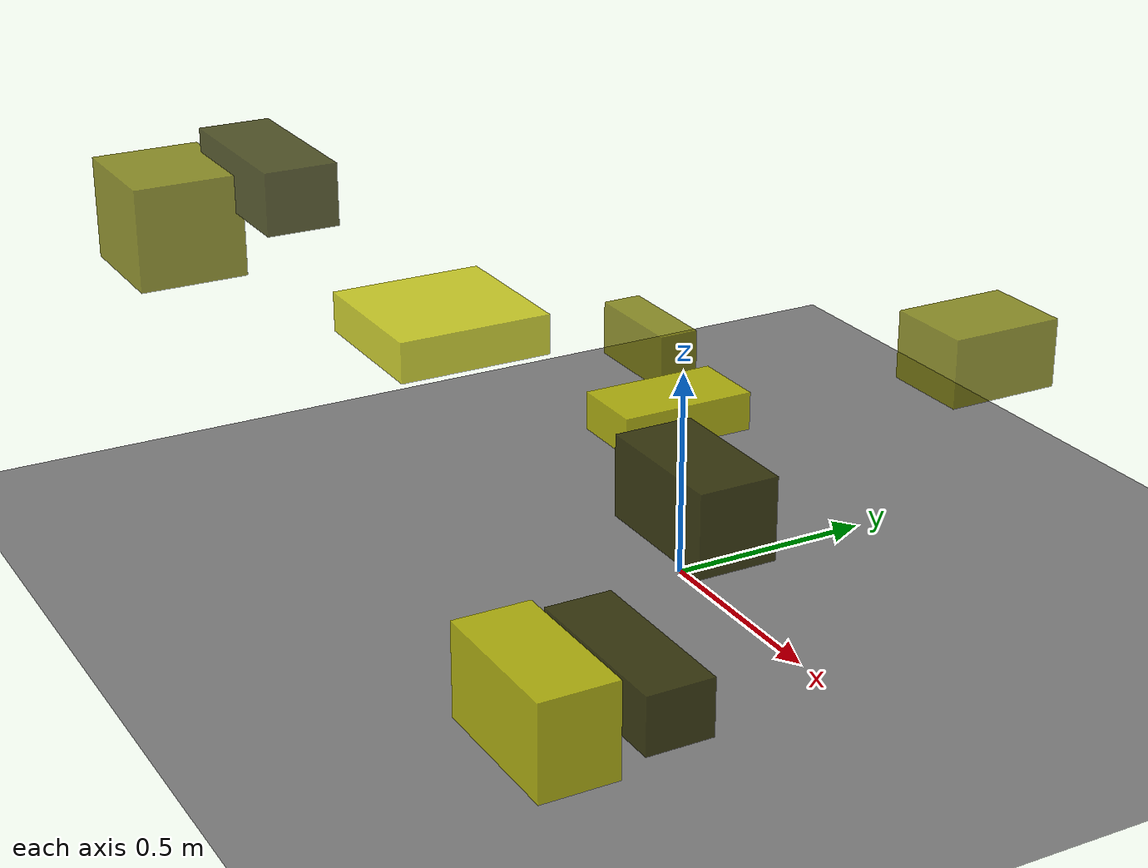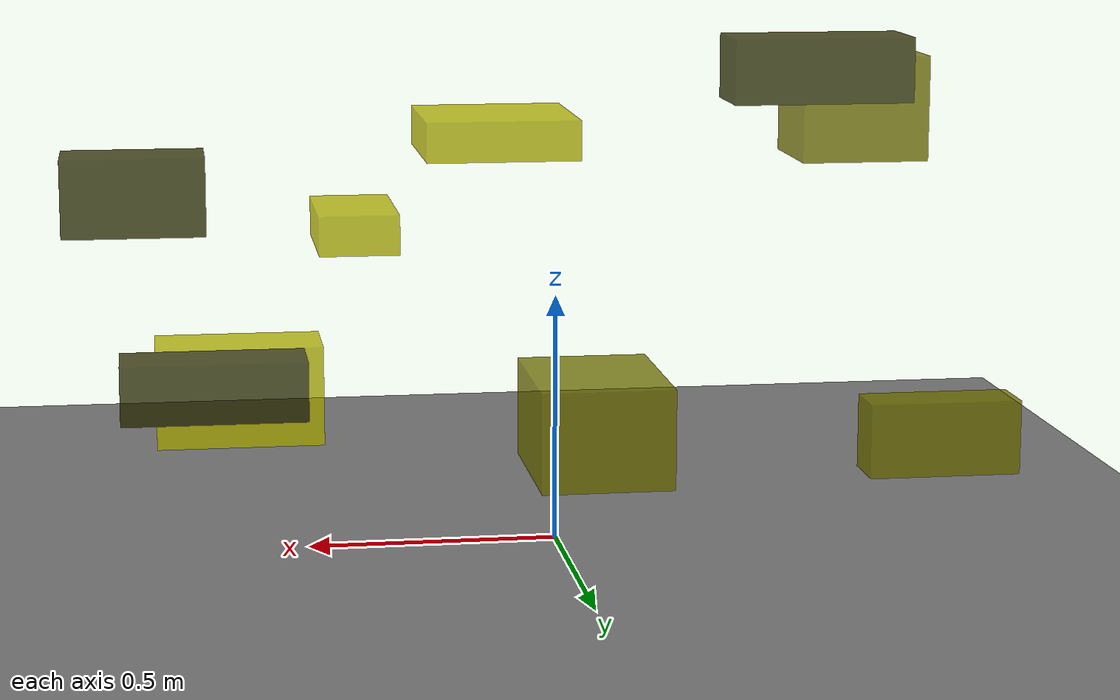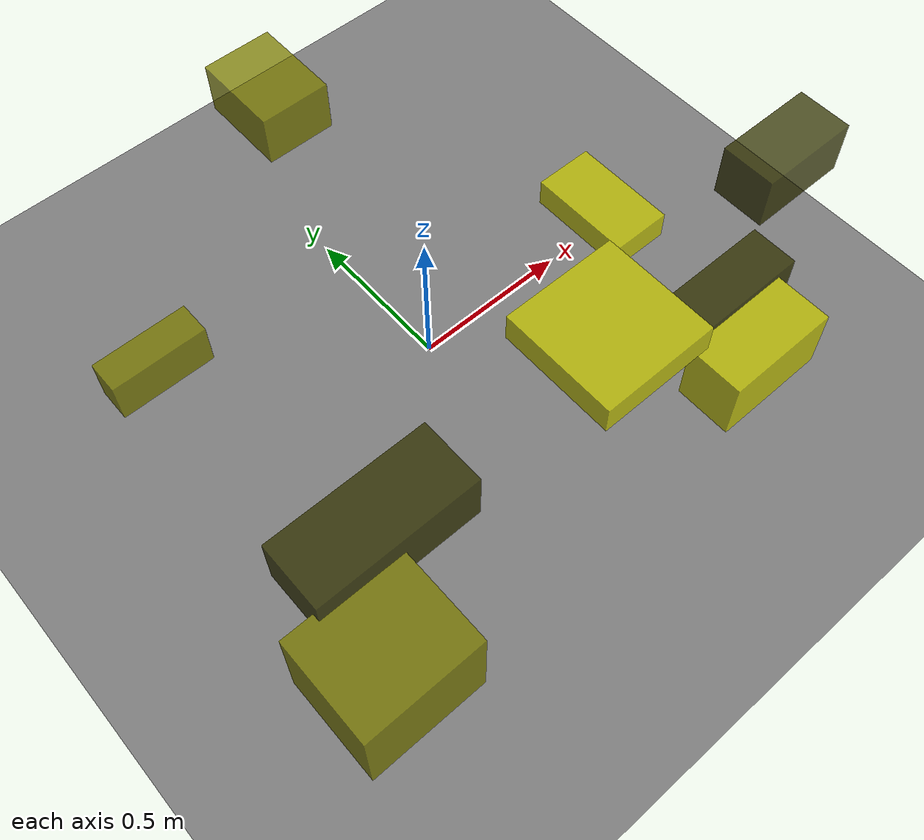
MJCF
<?xml version="1.0"?>
<mujoco model="obstacle_scene">
  <compiler angle="radian" coordinate="local"/>
  <option timestep="0.001" gravity="0 0 -9.81"/>

  <asset>
    <material name="obstacle_mat" rgba="0.8 0.8 0.0 0.8"/>
    <material name="ground_mat" rgba="0.5 0.5 0.5 1"/>
  </asset>

  <worldbody>
    <!-- Ground plane -->
    <geom name="ground" type="plane" size="3 3 0.1" material="ground_mat"/>

    <!-- Obstacles -->
    <body name="obstacle_0" pos="0.672127 -0.532053 0.215675">
      <geom name="obs_0" type="box" size="0.202718 0.077000 0.065935" rgba="0.2 0.2 0.0 0.8"/>
    </body>
    <body name="obstacle_1" pos="0.052819 0.789515 0.427866">
      <geom name="obs_1" type="box" size="0.113453 0.147431 0.086403" rgba="0.5 0.5 0.0 0.8"/>
    </body>
    <body name="obstacle_2" pos="0.042623 -0.621729 0.752737">
      <geom name="obs_2" type="box" size="0.167558 0.167807 0.043665" rgba="0.8 0.8 0.0 0.8"/>
    </body>
    <body name="obstacle_3" pos="-0.702120 -0.698717 0.877413">
      <geom name="obs_3" type="box" size="0.204496 0.086183 0.073421" rgba="0.2 0.2 0.0 0.8"/>
    </body>
    <body name="obstacle_4" pos="-0.840167 -0.893878 0.771790">
      <geom name="obs_4" type="box" size="0.147257 0.128385 0.121615" rgba="0.5 0.5 0.0 0.8"/>
    </body>
    <body name="obstacle_5" pos="0.382249 -0.272397 0.609461">
      <geom name="obs_5" type="box" size="0.082015 0.145425 0.041011" rgba="0.8 0.8 0.0 0.8"/>
    </body>
    <body name="obstacle_6" pos="0.835574 -0.488594 0.652064">
      <geom name="obs_6" type="box" size="0.151923 0.081310 0.084071" rgba="0.2 0.2 0.0 0.8"/>
    </body>
    <body name="obstacle_7" pos="-0.699433 0.326115 0.272785">
      <geom name="obs_7" type="box" size="0.146887 0.051664 0.072027" rgba="0.5 0.5 0.0 0.8"/>
    </body>
    <body name="obstacle_8" pos="0.611557 -0.707497 0.169426">
      <geom name="obs_8" type="box" size="0.185223 0.091459 0.111201" rgba="0.8 0.8 0.0 0.8"/>
    </body>
  </worldbody>
</mujoco>
